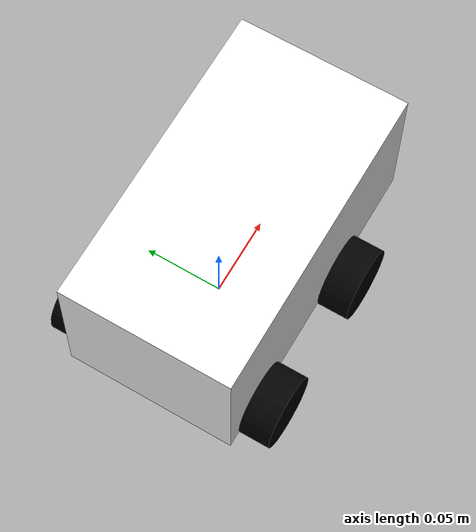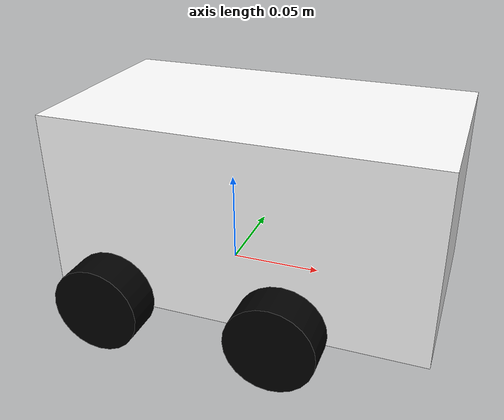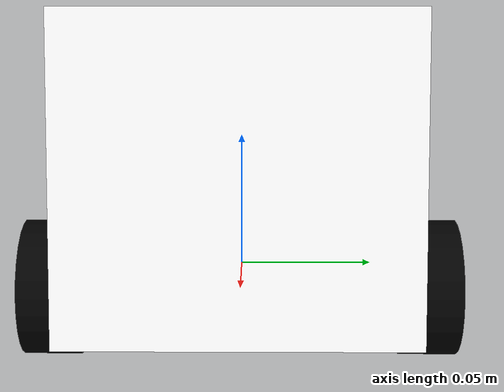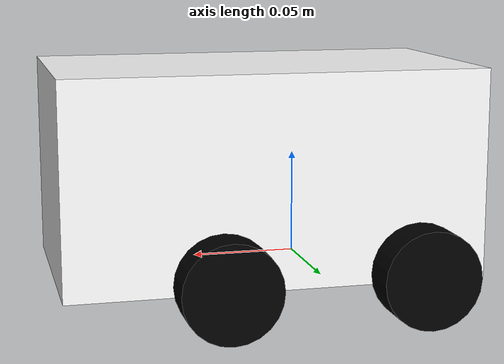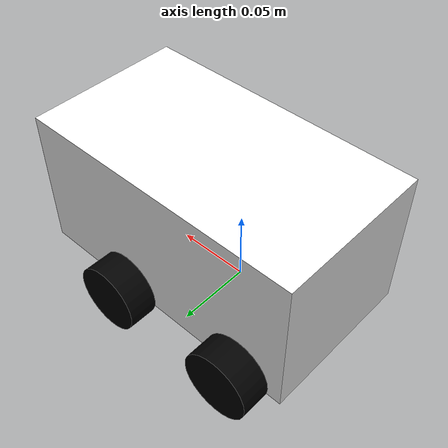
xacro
<?xml version="1.0"?>
<robot xmlns:xacro="http://www.ros.org/wiki/xacro" >

    <xacro:include filename="inertial_macros.xacro" />

    <material name="white">
        <color rgba="1 1 1 1" />
    </material>

    <material name="orange">
        <color rgba="1 0.3 0.1 1"/>
    </material>

    <material name="blue">
        <color rgba="0.2 0.2 1 1"/>
    </material>

    <material name="black">
        <color rgba="0 0 0 1"/>
    </material>

    <link name="base_link">

    </link>

    <joint name="chassis_joint" type="fixed">
        <parent link= "base_link"/>
        <child link= "chassis" />
        <origin xyz="-0.08 0 0" />
    </joint>

    <link name="chassis">
        <visual>
        <origin xyz="0.1 0 0.045"/>
            <geometry>
                <box size="0.2 0.11 0.1"/>
            </geometry>
            <material name="white"/>
       </visual>
        <collision>
        <origin xyz="0.1 0 0.045"/>
            <geometry>
                <box size="0.2 0.11 0.1"/>
            </geometry>
        </collision>
        <xacro:inertial_box mass="1.5" x="0.2" y="0.11" z="0.1">
            <origin xyz="0.1 0 0.045" rpy="0 0 0"/>
        </xacro:inertial_box>
    </link>

    <!--Left-Front Wheel-->
    <joint name="left_front_wheel_joint" type="continuous">
        <parent link="base_link"/>
        <child link="left_front_wheel"/>
        <origin xyz="0.047 0.065 0" rpy="-${pi/2} 0 0"/>
        <axis xyz="0 0 1"/>
    </joint>

    <link name="left_front_wheel">
        <visual>
            <origin xyz="0 0 0" rpy="0 0 0"/>
            <geometry>
                <cylinder length="0.02" radius="0.0235"/>
            </geometry>
            <material name="black"/>
        </visual>
        <collision>
            <origin xyz="0 0 0" rpy="0 0 0"/>
            <geometry>
                <cylinder length="0.02" radius="0.0235"/>
            </geometry>
        </collision>
        <xacro:inertial_cylinder mass="0.05" length="0.02" radius="0.0235">
            <origin xyz="0 0 0" rpy="0 0 0"/>
        </xacro:inertial_cylinder>
    </link>

    <!--Right-Front Wheel-->
    <joint name="right_front_wheel_joint" type="continuous">
        <parent link="base_link"/>
        <child link="right_front_wheel"/>
        <origin xyz="0.047 -0.065 0" rpy="${pi/2} 0 0"/>
        <axis xyz="0 0 -1"/>
    </joint>

    <link name="right_front_wheel">
        <visual>
            <origin xyz="0 0 0" rpy="0 0 0"/>
            <geometry>
                <cylinder length="0.02" radius="0.0235"/>
            </geometry>
            <material name="black"/>
        </visual>
        <collision>
            <origin xyz="0 0 0" rpy="0 0 0"/>
            <geometry>
                <cylinder length="0.02" radius="0.0235"/>
            </geometry>
        </collision>
        <xacro:inertial_cylinder mass="0.05" length="0.02" radius="0.0235">
            <origin xyz="0 0 0" rpy="0 0 0"/>
        </xacro:inertial_cylinder>
    </link>

    <!--Left-Back Wheel-->
    <joint name="left_back_wheel_joint" type="continuous">
        <parent link="base_link"/>
        <child link="left_back_wheel"/>
        <origin xyz="-0.047 0.065 0" rpy="-${pi/2} 0 0"/>
        <axis xyz="0 0 1"/>
    </joint>

    <link name="left_back_wheel">
        <visual>
            <origin xyz="0 0 0" rpy="0 0 0"/>
            <geometry>
                <cylinder length="0.02" radius="0.0235"/>
            </geometry>
            <material name="black"/>
        </visual>
        <collision>
            <origin xyz="0 0 0" rpy="0 0 0"/>
            <geometry>
                <cylinder length="0.02" radius="0.0235"/>
            </geometry>
        </collision>
        <xacro:inertial_cylinder mass="0.05" length="0.02" radius="0.0235">
            <origin xyz="0 0 0" rpy="0 0 0"/>
        </xacro:inertial_cylinder>
    </link>

    <!--Right-back Wheel-->
    <joint name="right_back_wheel_joint" type="continuous">
        <parent link="base_link"/>
        <child link="right_back_wheel"/>
        <origin xyz="-0.047 -0.065 0" rpy="${pi/2} 0 0"/>
        <axis xyz="0 0 -1"/>
    </joint>

    <link name="right_back_wheel">
        <visual>
            <origin xyz="0 0 0" rpy="0 0 0"/>
            <geometry>
                <cylinder length="0.02" radius="0.0235"/>
            </geometry>
            <material name="black"/>
        </visual>
        <collision>
            <origin xyz="0 0 0" rpy="0 0 0"/>
            <geometry>
                <cylinder length="0.02" radius="0.0235"/>
            </geometry>
        </collision>
        <xacro:inertial_cylinder mass="0.05" length="0.02" radius="0.0235">
            <origin xyz="0 0 0" rpy="0 0 0"/>
        </xacro:inertial_cylinder>
    </link>
</robot>
